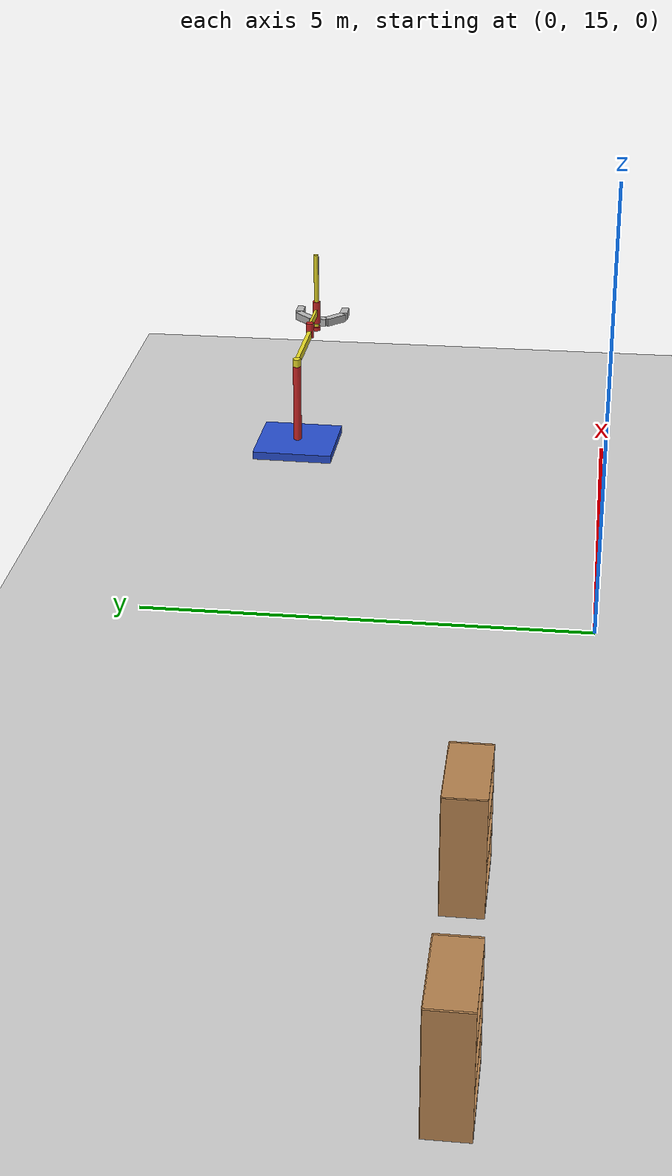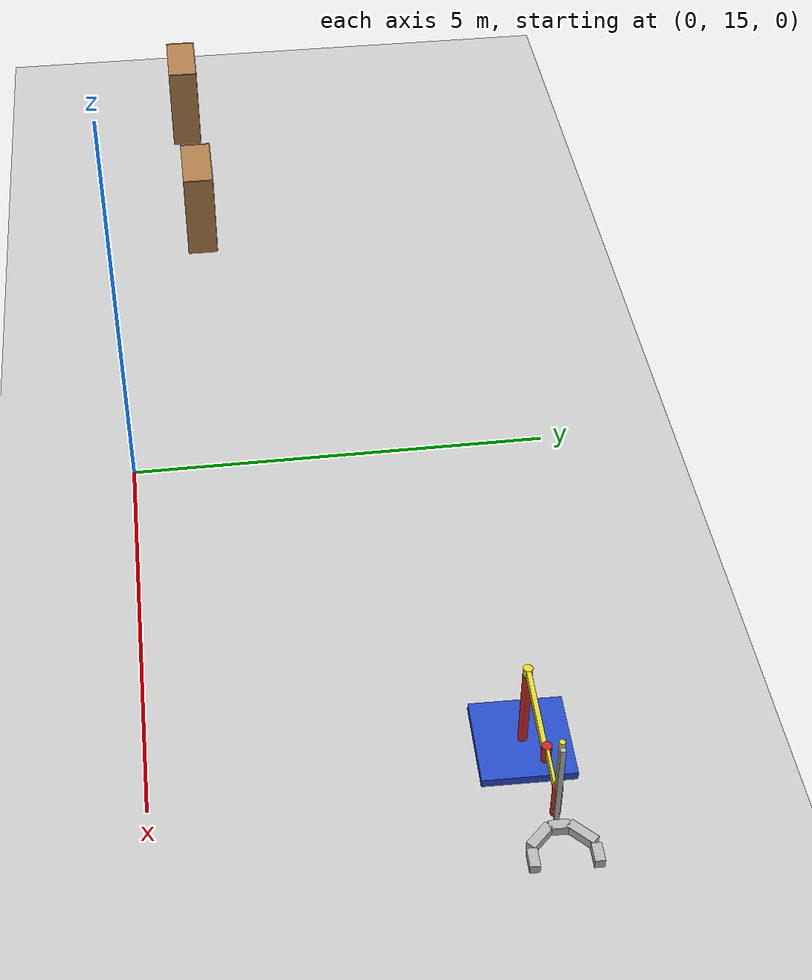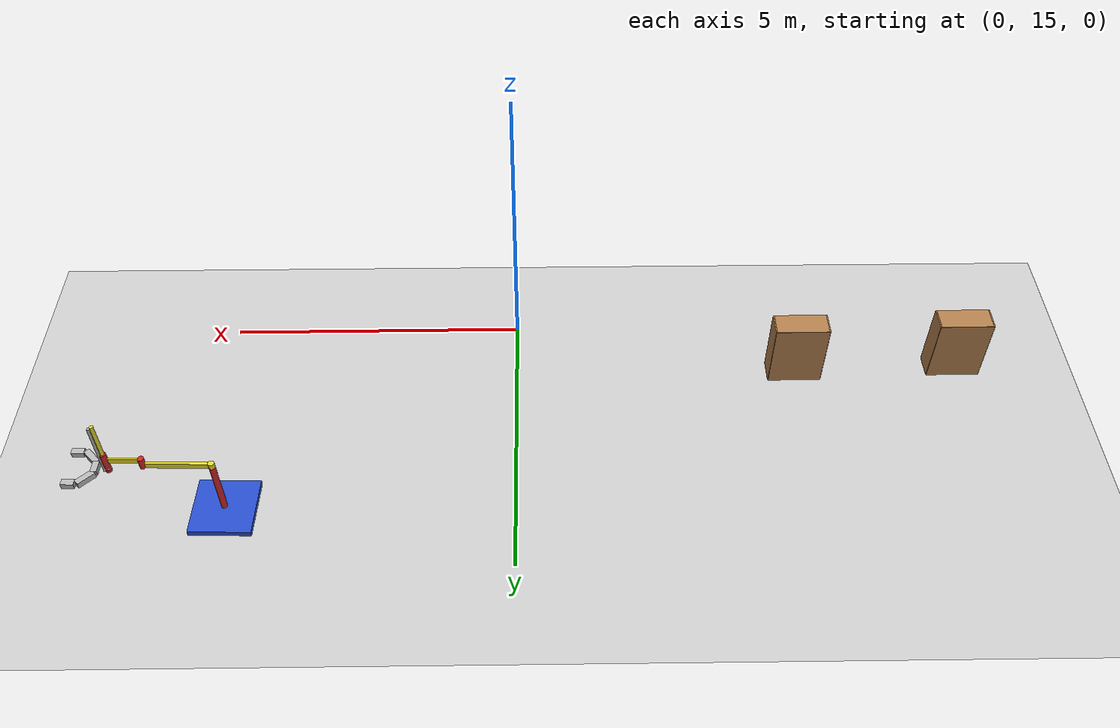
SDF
<sdf version="1.7">
 <world name="default">
  <model name="ground_plane">
   <static>1</static>
   <link name="link">
    <collision name="collision">
     <geometry><plane><normal>0 0 1</normal><size>100 100</size></plane></geometry>
     <surface><friction><ode><mu>100</mu><mu2>50</mu2></ode></friction></surface>
    </collision>
    <visual name="visual">
     <cast_shadows>0</cast_shadows>
     <geometry><plane><normal>0 0 1</normal><size>100 100</size></plane></geometry>
     <material>
      <script><uri>file://media/materials/scripts/gazebo.material</uri><name>Gazebo/Grey</name></script>
     </material>
    </visual>
   </link>
  </model>
  <model name="bookshelf">
   <static>1</static>
   <link name="link">
    <inertial><mass>1</mass></inertial>
    <collision name="back">
     <pose>0 0.005 0.6 0 -0 0</pose>
     <geometry><box><size>0.9 0.01 1.2</size></box></geometry>
    </collision>
    <visual name="visual1">
     <pose>0 0.005 0.6 0 -0 0</pose>
     <geometry><box><size>0.9 0.01 1.2</size></box></geometry>
     <material>
      <script><uri>file://media/materials/scripts/gazebo.material</uri><name>Gazebo/Wood</name></script>
     </material>
    </visual>
    <collision name="left_side">
     <pose>0.45 -0.195 0.6 0 -0 0</pose>
     <geometry><box><size>0.02 0.4 1.2</size></box></geometry>
    </collision>
    <visual name="visual2">
     <pose>0.45 -0.195 0.6 0 -0 0</pose>
     <geometry><box><size>0.02 0.4 1.2</size></box></geometry>
     <material>
      <script><uri>file://media/materials/scripts/gazebo.material</uri><name>Gazebo/Wood</name></script>
     </material>
    </visual>
    <collision name="right_side">
     <pose>-0.45 -0.195 0.6 0 -0 0</pose>
     <geometry><box><size>0.02 0.4 1.2</size></box></geometry>
    </collision>
    <visual name="visual3">
     <pose>-0.45 -0.195 0.6 0 -0 0</pose>
     <geometry><box><size>0.02 0.4 1.2</size></box></geometry>
     <material>
      <script><uri>file://media/materials/scripts/gazebo.material</uri><name>Gazebo/Wood</name></script>
     </material>
    </visual>
    <collision name="bottom">
     <pose>0 -0.195 0.03 0 -0 0</pose>
     <geometry><box><size>0.88 0.4 0.06</size></box></geometry>
    </collision>
    <visual name="visual4">
     <pose>0 -0.195 0.03 0 -0 0</pose>
     <geometry><box><size>0.88 0.4 0.06</size></box></geometry>
     <material>
      <script><uri>file://media/materials/scripts/gazebo.material</uri><name>Gazebo/Wood</name></script>
     </material>
    </visual>
    <collision name="top">
     <pose>0 -0.195 1.19 0 -0 0</pose>
     <geometry><box><size>0.88 0.4 0.02</size></box></geometry>
    </collision>
    <visual name="visual5">
     <pose>0 -0.195 1.19 0 -0 0</pose>
     <geometry><box><size>0.88 0.4 0.02</size></box></geometry>
     <material>
      <script><uri>file://media/materials/scripts/gazebo.material</uri><name>Gazebo/Wood</name></script>
     </material>
    </visual>
    <collision name="low_shelf">
     <pose>0 -0.195 0.43 0 -0 0</pose>
     <geometry><box><size>0.88 0.4 0.02</size></box></geometry>
    </collision>
    <visual name="visual6">
     <pose>0 -0.195 0.43 0 -0 0</pose>
     <geometry><box><size>0.88 0.4 0.02</size></box></geometry>
     <material>
      <script><uri>file://media/materials/scripts/gazebo.material</uri><name>Gazebo/Wood</name></script>
     </material>
    </visual>
    <collision name="high_shelf">
     <pose>0 -0.195 0.8 0 -0 0</pose>
     <geometry><box><size>0.88 0.4 0.02</size></box></geometry>
    </collision>
    <visual name="visual7">
     <pose>0 -0.195 0.8 0 -0 0</pose>
     <geometry><box><size>0.88 0.4 0.02</size></box></geometry>
     <material>
      <script><uri>file://media/materials/scripts/gazebo.material</uri><name>Gazebo/Wood</name></script>
     </material>
    </visual>
   </link>
   <pose>-7.60141 16.1678 0 0 -0 0</pose>
  </model>
  <model name="bookshelf_0">
   <static>1</static>
   <link name="link">
    <inertial><mass>1</mass></inertial>
    <collision name="back">
     <pose>0 0.005 0.6 0 -0 0</pose>
     <geometry><box><size>0.9 0.01 1.2</size></box></geometry>
    </collision>
    <visual name="visual1">
     <pose>0 0.005 0.6 0 -0 0</pose>
     <geometry><box><size>0.9 0.01 1.2</size></box></geometry>
     <material>
      <script><uri>file://media/materials/scripts/gazebo.material</uri><name>Gazebo/Wood</name></script>
     </material>
    </visual>
    <collision name="left_side">
     <pose>0.45 -0.195 0.6 0 -0 0</pose>
     <geometry><box><size>0.02 0.4 1.2</size></box></geometry>
    </collision>
    <visual name="visual2">
     <pose>0.45 -0.195 0.6 0 -0 0</pose>
     <geometry><box><size>0.02 0.4 1.2</size></box></geometry>
     <material>
      <script><uri>file://media/materials/scripts/gazebo.material</uri><name>Gazebo/Wood</name></script>
     </material>
    </visual>
    <collision name="right_side">
     <pose>-0.45 -0.195 0.6 0 -0 0</pose>
     <geometry><box><size>0.02 0.4 1.2</size></box></geometry>
    </collision>
    <visual name="visual3">
     <pose>-0.45 -0.195 0.6 0 -0 0</pose>
     <geometry><box><size>0.02 0.4 1.2</size></box></geometry>
     <material>
      <script><uri>file://media/materials/scripts/gazebo.material</uri><name>Gazebo/Wood</name></script>
     </material>
    </visual>
    <collision name="bottom">
     <pose>0 -0.195 0.03 0 -0 0</pose>
     <geometry><box><size>0.88 0.4 0.06</size></box></geometry>
    </collision>
    <visual name="visual4">
     <pose>0 -0.195 0.03 0 -0 0</pose>
     <geometry><box><size>0.88 0.4 0.06</size></box></geometry>
     <material>
      <script><uri>file://media/materials/scripts/gazebo.material</uri><name>Gazebo/Wood</name></script>
     </material>
    </visual>
    <collision name="top">
     <pose>0 -0.195 1.19 0 -0 0</pose>
     <geometry><box><size>0.88 0.4 0.02</size></box></geometry>
    </collision>
    <visual name="visual5">
     <pose>0 -0.195 1.19 0 -0 0</pose>
     <geometry><box><size>0.88 0.4 0.02</size></box></geometry>
     <material>
      <script><uri>file://media/materials/scripts/gazebo.material</uri><name>Gazebo/Wood</name></script>
     </material>
    </visual>
    <collision name="low_shelf">
     <pose>0 -0.195 0.43 0 -0 0</pose>
     <geometry><box><size>0.88 0.4 0.02</size></box></geometry>
    </collision>
    <visual name="visual6">
     <pose>0 -0.195 0.43 0 -0 0</pose>
     <geometry><box><size>0.88 0.4 0.02</size></box></geometry>
     <material>
      <script><uri>file://media/materials/scripts/gazebo.material</uri><name>Gazebo/Wood</name></script>
     </material>
    </visual>
    <collision name="high_shelf">
     <pose>0 -0.195 0.8 0 -0 0</pose>
     <geometry><box><size>0.88 0.4 0.02</size></box></geometry>
    </collision>
    <visual name="visual7">
     <pose>0 -0.195 0.8 0 -0 0</pose>
     <geometry><box><size>0.88 0.4 0.02</size></box></geometry>
     <material>
      <script><uri>file://media/materials/scripts/gazebo.material</uri><name>Gazebo/Wood</name></script>
     </material>
    </visual>
   </link>
   <pose>-4.81921 16.2555 0 0 -0 0</pose>
  </model>
  <model name="simple_arm_gripper">
   <frame name="simple_arm::__model__" attached_to="simple_arm::arm_base">
    <pose relative_to="__model__">0 0 0 0 -0 0</pose>
   </frame>
   <link name="simple_arm::arm_base">
    <inertial>
     <pose>0 0 0.00099 0 -0 0</pose>
     <inertia><ixx>1.11</ixx><ixy>0</ixy><ixz>0</ixz><iyy>100.11</iyy><iyz>0</iyz><izz>1.01</izz></inertia>
     <mass>101</mass>
    </inertial>
    <collision name="arm_base_geom">
     <pose>0 0 0.05 0 -0 0</pose>
     <geometry><box><size>1 1 0.1</size></box></geometry>
    </collision>
    <visual name="arm_base_geom_visual">
     <pose>0 0 0.05 0 -0 0</pose>
     <geometry><box><size>1 1 0.1</size></box></geometry>
     <material>
      <script><uri>file://media/materials/scripts/gazebo.material</uri><name>Gazebo/Blue</name></script>
     </material>
    </visual>
    <collision name="arm_base_geom_arm_trunk">
     <pose>0 0 0.6 0 -0 0</pose>
     <geometry><cylinder><radius>0.05</radius><length>1</length></cylinder></geometry>
    </collision>
    <visual name="arm_base_geom_arm_trunk_visual">
     <pose>0 0 0.6 0 -0 0</pose>
     <geometry><cylinder><radius>0.05</radius><length>1</length></cylinder></geometry>
     <material>
      <script><uri>file://media/materials/scripts/gazebo.material</uri><name>Gazebo/Red</name></script>
     </material>
    </visual>
    <pose relative_to="simple_arm::__model__">0 0 0 0 -0 0</pose>
   </link>
   <link name="simple_arm::arm_shoulder_pan">
    <pose relative_to="simple_arm::__model__">0 0 1.1 0 -0 0</pose>
    <inertial>
     <pose>0.045455 0 0 0 -0 0</pose>
     <inertia><ixx>0.011</ixx><ixy>0</ixy><ixz>0</ixz><iyy>0.0225</iyy><iyz>0</iyz><izz>0.0135</izz></inertia>
     <mass>1.1</mass>
    </inertial>
    <collision name="arm_shoulder_pan_geom">
     <pose>0 0 0.05 0 -0 0</pose>
     <geometry><cylinder><radius>0.05</radius><length>0.1</length></cylinder></geometry>
    </collision>
    <visual name="arm_shoulder_pan_geom_visual">
     <pose>0 0 0.05 0 -0 0</pose>
     <geometry><cylinder><radius>0.05</radius><length>0.1</length></cylinder></geometry>
     <material>
      <script><uri>file://media/materials/scripts/gazebo.material</uri><name>Gazebo/Yellow</name></script>
     </material>
    </visual>
    <collision name="arm_shoulder_pan_geom_arm_shoulder">
     <pose>0.55 0 0.05 0 -0 0</pose>
     <geometry><box><size>1 0.05 0.1</size></box></geometry>
    </collision>
    <visual name="arm_shoulder_pan_geom_arm_shoulder_visual">
     <pose>0.55 0 0.05 0 -0 0</pose>
     <geometry><box><size>1 0.05 0.1</size></box></geometry>
     <material>
      <script><uri>file://media/materials/scripts/gazebo.material</uri><name>Gazebo/Yellow</name></script>
     </material>
    </visual>
   </link>
   <link name="simple_arm::arm_elbow_pan">
    <pose relative_to="simple_arm::__model__">1.05 0 1.1 0 -0 0</pose>
    <inertial>
     <pose>0.0875 0 0.083333 0 -0 0</pose>
     <inertia>
      <ixx>0.031</ixx>
      <ixy>0</ixy>
      <ixz>0.005</ixz>
      <iyy>0.07275</iyy>
      <iyz>0</iyz>
      <izz>0.04475</izz>
     </inertia>
     <mass>1.2</mass>
    </inertial>
    <collision name="arm_elbow_pan_geom">
     <pose>0 0 0.1 0 -0 0</pose>
     <geometry><cylinder><radius>0.05</radius><length>0.2</length></cylinder></geometry>
    </collision>
    <visual name="arm_elbow_pan_geom_visual">
     <pose>0 0 0.1 0 -0 0</pose>
     <geometry><cylinder><radius>0.05</radius><length>0.2</length></cylinder></geometry>
     <material>
      <script><uri>file://media/materials/scripts/gazebo.material</uri><name>Gazebo/Red</name></script>
     </material>
    </visual>
    <collision name="arm_elbow_pan_geom_arm_elbow">
     <pose>0.3 0 0.15 0 -0 0</pose>
     <geometry><box><size>0.5 0.03 0.1</size></box></geometry>
    </collision>
    <visual name="arm_elbow_pan_geom_arm_elbow_visual">
     <pose>0.3 0 0.15 0 -0 0</pose>
     <geometry><box><size>0.5 0.03 0.1</size></box></geometry>
     <material>
      <script><uri>file://media/materials/scripts/gazebo.material</uri><name>Gazebo/Yellow</name></script>
     </material>
    </visual>
    <collision name="arm_elbow_pan_geom_arm_wrist">
     <pose>0.55 0 0.15 0 -0 0</pose>
     <geometry><cylinder><radius>0.05</radius><length>0.3</length></cylinder></geometry>
    </collision>
    <visual name="arm_elbow_pan_geom_arm_wrist_visual">
     <pose>0.55 0 0.15 0 -0 0</pose>
     <geometry><cylinder><radius>0.05</radius><length>0.3</length></cylinder></geometry>
     <material>
      <script><uri>file://media/materials/scripts/gazebo.material</uri><name>Gazebo/Red</name></script>
     </material>
    </visual>
   </link>
   <link name="simple_arm::arm_wrist_lift">
    <pose relative_to="simple_arm::__model__">1.6 0 1.05 0 -0 0</pose>
    <inertial>
     <inertia><ixx>0.01</ixx><ixy>0</ixy><ixz>0</ixz><iyy>0.01</iyy><iyz>0</iyz><izz>0.001</izz></inertia>
     <mass>0.1</mass>
    </inertial>
    <collision name="arm_wrist_lift_geom">
     <pose>0 0 0.5 0 -0 0</pose>
     <geometry><cylinder><radius>0.03</radius><length>1</length></cylinder></geometry>
    </collision>
    <visual name="arm_wrist_lift_geom_visual">
     <pose>0 0 0.5 0 -0 0</pose>
     <geometry><cylinder><radius>0.03</radius><length>1</length></cylinder></geometry>
     <material>
      <script><uri>file://media/materials/scripts/gazebo.material</uri><name>Gazebo/Yellow</name></script>
     </material>
    </visual>
   </link>
   <link name="simple_arm::arm_wrist_roll">
    <pose relative_to="simple_arm::__model__">1.6 0 1 0 -0 0</pose>
    <inertial>
     <inertia><ixx>0.01</ixx><ixy>0</ixy><ixz>0</ixz><iyy>0.01</iyy><iyz>0</iyz><izz>0.001</izz></inertia>
     <mass>0.1</mass>
    </inertial>
    <collision name="arm_wrist_roll_geom">
     <pose>0 0 0.025 0 -0 0</pose>
     <geometry><cylinder><radius>0.05</radius><length>0.05</length></cylinder></geometry>
    </collision>
    <visual name="arm_wrist_roll_geom_visual">
     <pose>0 0 0.025 0 -0 0</pose>
     <geometry><cylinder><radius>0.05</radius><length>0.05</length></cylinder></geometry>
     <material>
      <script><uri>file://media/materials/scripts/gazebo.material</uri><name>Gazebo/Red</name></script>
     </material>
    </visual>
   </link>
   <joint name="simple_arm::arm_shoulder_pan_joint" type="revolute">
    <parent>simple_arm::arm_base</parent>
    <child>simple_arm::arm_shoulder_pan</child>
    <axis>
     <dynamics>
      <damping>1</damping>
      <friction>0</friction>
      <spring_reference>0</spring_reference>
      <spring_stiffness>0</spring_stiffness>
     </dynamics>
     <xyz expressed_in="simple_arm::__model__">0 0 1</xyz>
     <limit><lower>-1e+16</lower><upper>1e+16</upper></limit>
    </axis>
   </joint>
   <joint name="simple_arm::arm_elbow_pan_joint" type="revolute">
    <parent>simple_arm::arm_shoulder_pan</parent>
    <child>simple_arm::arm_elbow_pan</child>
    <axis>
     <dynamics>
      <damping>1</damping>
      <friction>0</friction>
      <spring_reference>0</spring_reference>
      <spring_stiffness>0</spring_stiffness>
     </dynamics>
     <xyz expressed_in="simple_arm::__model__">0 0 1</xyz>
     <limit><lower>-1e+16</lower><upper>1e+16</upper></limit>
    </axis>
   </joint>
   <joint name="simple_arm::arm_wrist_lift_joint" type="prismatic">
    <parent>simple_arm::arm_elbow_pan</parent>
    <child>simple_arm::arm_wrist_lift</child>
    <axis>
     <dynamics>
      <damping>1</damping>
      <friction>0</friction>
      <spring_reference>0</spring_reference>
      <spring_stiffness>0</spring_stiffness>
     </dynamics>
     <limit><lower>-0.8</lower><upper>0.1</upper></limit>
     <xyz expressed_in="simple_arm::__model__">0 0 1</xyz>
    </axis>
   </joint>
   <joint name="simple_arm::arm_wrist_roll_joint" type="revolute">
    <parent>simple_arm::arm_wrist_lift</parent>
    <child>simple_arm::arm_wrist_roll</child>
    <axis>
     <dynamics>
      <damping>1</damping>
      <friction>0</friction>
      <spring_reference>0</spring_reference>
      <spring_stiffness>0</spring_stiffness>
     </dynamics>
     <limit><lower>-2.99999</lower><upper>2.99999</upper></limit>
     <xyz expressed_in="simple_arm::__model__">0 0 1</xyz>
    </axis>
   </joint>
   <frame name="simple_gripper::__model__" attached_to="simple_gripper::riser">
    <pose relative_to="__model__">1.8 0 1 0 -0 0</pose>
   </frame>
   <link name="simple_gripper::riser">
    <pose relative_to="simple_gripper::__model__">-0.15 0 0.5 0 -0 0</pose>
    <inertial>
     <mass>10</mass>
     <inertia><ixx>1</ixx><ixy>0</ixy><ixz>0</ixz><iyy>1</iyy><iyz>0</iyz><izz>1</izz></inertia>
    </inertial>
    <collision name="collision">
     <geometry><box><size>0.05 0.05 1</size></box></geometry>
     <surface><contact><ode><max_vel>0</max_vel></ode></contact></surface>
    </collision>
    <visual name="visual"><geometry><box><size>0.05 0.05 1</size></box></geometry></visual>
   </link>
   <link name="simple_gripper::palm">
    <pose relative_to="simple_gripper::__model__">0 0 0.05 0 -0 0</pose>
    <inertial>
     <mass>0.5</mass>
     <inertia><ixx>1</ixx><ixy>0</ixy><ixz>0</ixz><iyy>1</iyy><iyz>0</iyz><izz>1</izz></inertia>
    </inertial>
    <collision name="collision">
     <geometry><box><size>0.1 0.2 0.1</size></box></geometry>
     <surface><contact><ode><max_vel>0</max_vel></ode></contact></surface>
    </collision>
    <visual name="visual"><geometry><box><size>0.1 0.2 0.1</size></box></geometry></visual>
   </link>
   <link name="simple_gripper::left_finger">
    <pose relative_to="simple_gripper::__model__">0.1 0.2 0.05 0 0 -0.78539</pose>
    <inertial>
     <mass>0.1</mass>
     <inertia><ixx>1</ixx><ixy>0</ixy><ixz>0</ixz><iyy>1</iyy><iyz>0</iyz><izz>1</izz></inertia>
    </inertial>
    <collision name="collision">
     <geometry><box><size>0.1 0.3 0.1</size></box></geometry>
     <surface>
      <friction><ode><mu>0.1</mu><mu2>0</mu2></ode></friction>
      <contact><ode><max_vel>0</max_vel></ode></contact>
     </surface>
    </collision>
    <visual name="visual"><geometry><box><size>0.1 0.3 0.1</size></box></geometry></visual>
   </link>
   <link name="simple_gripper::left_finger_tip">
    <pose relative_to="simple_gripper::__model__">0.336 0.3 0.05 0 -0 1.5707</pose>
    <inertial>
     <mass>0.5</mass>
     <inertia><ixx>1</ixx><ixy>0</ixy><ixz>0</ixz><iyy>1</iyy><iyz>0</iyz><izz>1</izz></inertia>
    </inertial>
    <collision name="collision">
     <geometry><box><size>0.1 0.2 0.1</size></box></geometry>
     <surface>
      <friction><ode><mu>0.1</mu><mu2>0</mu2></ode></friction>
      <contact><ode><max_vel>0</max_vel></ode></contact>
     </surface>
    </collision>
    <visual name="visual"><geometry><box><size>0.1 0.2 0.1</size></box></geometry></visual>
   </link>
   <link name="simple_gripper::right_finger">
    <pose relative_to="simple_gripper::__model__">0.1 -0.2 0.05 0 -0 0.78539</pose>
    <inertial>
     <mass>0.1</mass>
     <inertia><ixx>1</ixx><ixy>0</ixy><ixz>0</ixz><iyy>1</iyy><iyz>0</iyz><izz>1</izz></inertia>
    </inertial>
    <collision name="collision">
     <geometry><box><size>0.1 0.3 0.1</size></box></geometry>
     <surface>
      <friction><ode><mu>0.1</mu><mu2>0</mu2></ode></friction>
      <contact><ode><max_vel>0</max_vel></ode></contact>
     </surface>
    </collision>
    <visual name="visual"><geometry><box><size>0.1 0.3 0.1</size></box></geometry></visual>
   </link>
   <link name="simple_gripper::right_finger_tip">
    <pose relative_to="simple_gripper::__model__">0.336 -0.3 0.05 0 -0 1.5707</pose>
    <inertial>
     <mass>0.1</mass>
     <inertia><ixx>1</ixx><ixy>0</ixy><ixz>0</ixz><iyy>1</iyy><iyz>0</iyz><izz>1</izz></inertia>
    </inertial>
    <collision name="collision">
     <geometry><box><size>0.1 0.2 0.1</size></box></geometry>
     <surface>
      <friction><ode><mu>0.1</mu><mu2>0</mu2></ode></friction>
      <contact><ode><max_vel>0</max_vel></ode></contact>
     </surface>
    </collision>
    <visual name="visual"><geometry><box><size>0.1 0.2 0.1</size></box></geometry></visual>
   </link>
   <joint name="simple_gripper::palm_left_finger" type="revolute">
    <pose>0 -0.15 0 0 -0 0</pose>
    <child>simple_gripper::left_finger</child>
    <parent>simple_gripper::palm</parent>
    <axis>
     <limit><lower>-0.8</lower><upper>0.8</upper></limit>
     <xyz expressed_in="simple_gripper::__model__">0 0 1</xyz>
     <dynamics><spring_reference>0</spring_reference><spring_stiffness>0</spring_stiffness></dynamics>
    </axis>
   </joint>
   <joint name="simple_gripper::left_finger_tip" type="revolute">
    <pose>0 0.1 0 0 -0 0</pose>
    <child>simple_gripper::left_finger_tip</child>
    <parent>simple_gripper::left_finger</parent>
    <axis>
     <limit><lower>-0.8</lower><upper>0.8</upper></limit>
     <xyz expressed_in="simple_gripper::__model__">0 0 1</xyz>
     <dynamics><spring_reference>0</spring_reference><spring_stiffness>0</spring_stiffness></dynamics>
    </axis>
   </joint>
   <joint name="simple_gripper::palm_right_finger" type="revolute">
    <pose>0 0.15 0 0 -0 0</pose>
    <child>simple_gripper::right_finger</child>
    <parent>simple_gripper::palm</parent>
    <axis>
     <limit><lower>-0.8</lower><upper>0.8</upper></limit>
     <xyz expressed_in="simple_gripper::__model__">0 0 1</xyz>
     <dynamics><spring_reference>0</spring_reference><spring_stiffness>0</spring_stiffness></dynamics>
    </axis>
   </joint>
   <joint name="simple_gripper::right_finger_tip" type="revolute">
    <pose>0 0.1 0 0 -0 0</pose>
    <child>simple_gripper::right_finger_tip</child>
    <parent>simple_gripper::right_finger</parent>
    <axis>
     <limit><lower>-0.8</lower><upper>0.8</upper></limit>
     <xyz expressed_in="simple_gripper::__model__">0 0 1</xyz>
     <dynamics><spring_reference>0</spring_reference><spring_stiffness>0</spring_stiffness></dynamics>
    </axis>
   </joint>
   <joint name="simple_gripper::palm_riser" type="prismatic">
    <child>simple_gripper::palm</child>
    <parent>simple_gripper::riser</parent>
    <axis>
     <limit><lower>0</lower><upper>0.9</upper></limit>
     <xyz expressed_in="simple_gripper::__model__">0 0 1</xyz>
     <dynamics><spring_reference>0</spring_reference><spring_stiffness>0</spring_stiffness></dynamics>
    </axis>
   </joint>
   <gripper name="simple_gripper">
    <grasp_check>
     <detach_steps>40</detach_steps>
     <attach_steps>20</attach_steps>
     <min_contact_count>2</min_contact_count>
    </grasp_check>
    <gripper_link>simple_gripper::right_finger</gripper_link>
    <gripper_link>simple_gripper::right_finger_tip</gripper_link>
    <gripper_link>simple_gripper::left_finger</gripper_link>
    <gripper_link>simple_gripper::left_finger_tip</gripper_link>
    <palm_link>simple_gripper::palm</palm_link>
   </gripper>
   <plugin name="simple_arm_plugin" filename="libJointTrajectoryPlugin.so"/>
   <joint name="arm_gripper_joint" type="revolute">
    <parent>simple_arm::arm_wrist_roll</parent>
    <child>simple_gripper::riser</child>
    <axis>
     <limit><lower>0</lower><upper>0</upper></limit>
     <xyz expressed_in="__model__">0 0 1</xyz>
     <dynamics><spring_reference>0</spring_reference><spring_stiffness>0</spring_stiffness></dynamics>
    </axis>
   </joint>
   <pose>4.61797 18.8961 0.009862 0.00028 -3e-06 -0.022238</pose>
  </model>
 </world>
</sdf>
